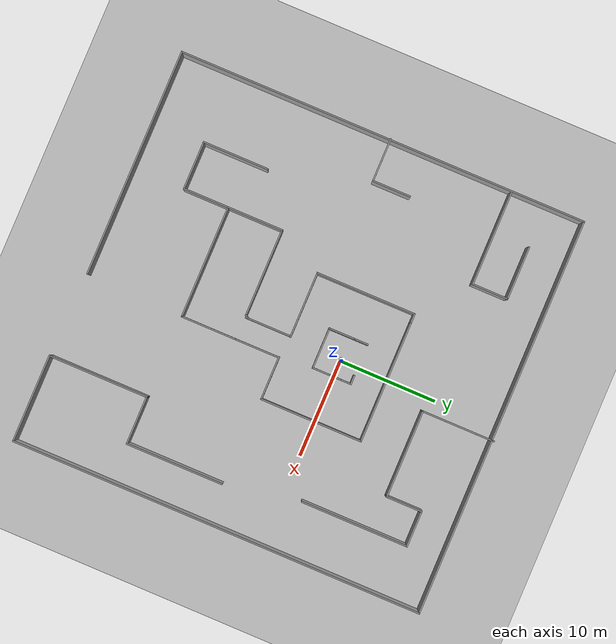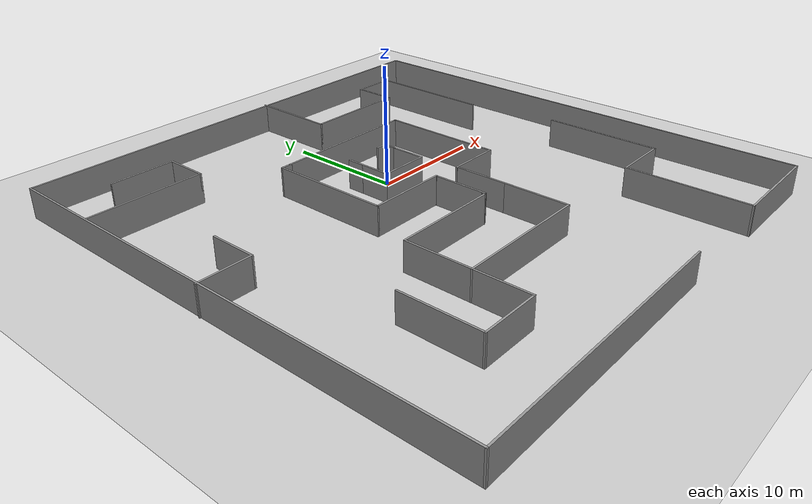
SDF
<sdf version="1.6">
 <world name="default">
  <light name="sun" type="directional">
   <pose>0 0 10 0 -0 0</pose>
   <diffuse>0.8 0.8 0.8 1</diffuse>
   <specular>0.2 0.2 0.2 1</specular>
   <attenuation>
    <range>1000</range>
    <constant>0.9</constant>
    <linear>0.01</linear>
    <quadratic>0.001</quadratic>
   </attenuation>
   <direction>-0.5 0.1 -0.9</direction>
  </light>
  <model name="ground_plane">
   <static>1</static>
   <link name="link">
    <collision name="collision">
     <geometry><plane><normal>0 0 1</normal><size>100 100</size></plane></geometry>
     <surface>
      <contact><collide_bitmask>65535</collide_bitmask></contact>
      <friction><ode><mu>100</mu><mu2>50</mu2></ode></friction>
     </surface>
    </collision>
    <visual name="visual">
     <cast_shadows>0</cast_shadows>
     <geometry><plane><normal>0 0 1</normal><size>100 100</size></plane></geometry>
     <material>
      <script><uri>file://media/materials/scripts/gazebo.material</uri><name>Gazebo/Grey</name></script>
     </material>
    </visual>
   </link>
  </model>
  <gravity>0 0 -9.8</gravity>
  <magnetic_field>6e-06 2.3e-05 -4.2e-05</magnetic_field>
  <atmosphere type="adiabatic"/>
  <physics name="default_physics" default="0" type="ode">
   <max_step_size>0.001</max_step_size>
   <real_time_factor>1</real_time_factor>
   <real_time_update_rate>1000</real_time_update_rate>
  </physics>
  <scene><ambient>0.4 0.4 0.4 1</ambient><background>0.7 0.7 0.7 1</background><shadows>1</shadows></scene>
  <audio><device>default</device></audio>
  <spherical_coordinates>
   <surface_model>EARTH_WGS84</surface_model>
   <latitude_deg>0</latitude_deg>
   <longitude_deg>0</longitude_deg>
   <elevation>0</elevation>
   <heading_deg>0</heading_deg>
  </spherical_coordinates>
  <model name="thing">
   <pose>-0.261635 -0.3973 0 0 -0 0</pose>
   <link name="Wall_10">
    <collision name="Wall_10_Collision">
     <geometry><box><size>4.25 0.15 2.5</size></box></geometry>
     <pose>0 0 1.25 0 -0 0</pose>
    </collision>
    <visual name="Wall_10_Visual">
     <pose>0 0 1.25 0 -0 0</pose>
     <geometry><box><size>4.25 0.15 2.5</size></box></geometry>
     <material>
      <script><uri>file://media/materials/scripts/gazebo.material</uri><name>Gazebo/Grey</name></script>
      <ambient>1 1 1 1</ambient>
     </material>
     <meta><layer>0</layer></meta>
    </visual>
    <pose>-0.118365 -1.7927 0 0 -0 0</pose>
   </link>
   <link name="Wall_11">
    <collision name="Wall_11_Collision">
     <geometry><box><size>3 0.15 2.5</size></box></geometry>
     <pose>0 0 1.25 0 -0 0</pose>
    </collision>
    <visual name="Wall_11_Visual">
     <pose>0 0 1.25 0 -0 0</pose>
     <geometry><box><size>3 0.15 2.5</size></box></geometry>
     <material>
      <script><uri>file://media/materials/scripts/gazebo.material</uri><name>Gazebo/Grey</name></script>
      <ambient>1 1 1 1</ambient>
     </material>
     <meta><layer>0</layer></meta>
    </visual>
    <pose>1.93163 -0.367697 0 0 -0 1.5708</pose>
   </link>
   <link name="Wall_13">
    <collision name="Wall_13_Collision">
     <geometry><box><size>1.25 0.15 2.5</size></box></geometry>
     <pose>0 0 1.25 0 -0 0</pose>
    </collision>
    <visual name="Wall_13_Visual">
     <pose>0 0 1.25 0 -0 0</pose>
     <geometry><box><size>1.25 0.15 2.5</size></box></geometry>
     <material>
      <script><uri>file://media/materials/scripts/gazebo.material</uri><name>Gazebo/Grey</name></script>
      <ambient>1 1 1 1</ambient>
     </material>
     <meta><layer>0</layer></meta>
    </visual>
    <pose>1.93163 1.6073 0 0 -0 1.5708</pose>
   </link>
   <link name="Wall_14">
    <collision name="Wall_14_Collision">
     <geometry><box><size>1 0.15 2.5</size></box></geometry>
     <pose>0 0 1.25 0 -0 0</pose>
    </collision>
    <visual name="Wall_14_Visual">
     <pose>0 0 1.25 0 -0 0</pose>
     <geometry><box><size>1 0.15 2.5</size></box></geometry>
     <material>
      <script><uri>file://media/materials/scripts/gazebo.material</uri><name>Gazebo/Grey</name></script>
      <ambient>1 1 1 1</ambient>
     </material>
     <meta><layer>0</layer></meta>
    </visual>
    <pose>1.50663 2.1573 0 0 -0 3.14159</pose>
   </link>
   <link name="Wall_16">
    <collision name="Wall_16_Collision">
     <geometry><box><size>1.5 0.15 2.5</size></box></geometry>
     <pose>0 0 1.25 0 -0 0</pose>
    </collision>
    <visual name="Wall_16_Visual">
     <pose>0 0 1.25 0 -0 0</pose>
     <geometry><box><size>1.5 0.15 2.5</size></box></geometry>
     <material>
      <script><uri>file://media/materials/scripts/gazebo.material</uri><name>Gazebo/Grey</name></script>
      <ambient>1 1 1 1</ambient>
     </material>
     <meta><layer>0</layer></meta>
    </visual>
    <pose>-2.16837 1.4823 0 0 -0 1.5708</pose>
   </link>
   <link name="Wall_18">
    <collision name="Wall_18_Collision">
     <geometry><box><size>12.5 0.15 2.5</size></box></geometry>
     <pose>0 0 1.25 0 -0 0</pose>
    </collision>
    <visual name="Wall_18_Visual">
     <pose>0 0 1.25 0 -0 0</pose>
     <geometry><box><size>12.5 0.15 2.5</size></box></geometry>
     <material>
      <script><uri>file://media/materials/scripts/gazebo.material</uri><name>Gazebo/Grey</name></script>
      <ambient>1 1 1 1</ambient>
     </material>
     <meta><layer>0</layer></meta>
    </visual>
    <pose>0.425 5.175 0 0 -0 0</pose>
   </link>
   <link name="Wall_19">
    <collision name="Wall_19_Collision">
     <geometry><box><size>10.5 0.15 2.5</size></box></geometry>
     <pose>0 0 1.25 0 -0 0</pose>
    </collision>
    <visual name="Wall_19_Visual">
     <pose>0 0 1.25 0 -0 0</pose>
     <geometry><box><size>10.5 0.15 2.5</size></box></geometry>
     <material>
      <script><uri>file://media/materials/scripts/gazebo.material</uri><name>Gazebo/Grey</name></script>
      <ambient>1 1 1 1</ambient>
     </material>
     <meta><layer>0</layer></meta>
    </visual>
    <pose>6.6 -0 0 0 -0 -1.5708</pose>
   </link>
   <link name="Wall_20">
    <collision name="Wall_20_Collision">
     <geometry><box><size>4.5 0.15 2.5</size></box></geometry>
     <pose>0 0 1.25 0 -0 0</pose>
    </collision>
    <visual name="Wall_20_Visual">
     <pose>0 0 1.25 0 -0 0</pose>
     <geometry><box><size>4.5 0.15 2.5</size></box></geometry>
     <material>
      <script><uri>file://media/materials/scripts/gazebo.material</uri><name>Gazebo/Grey</name></script>
      <ambient>1 1 1 1</ambient>
     </material>
     <meta><layer>0</layer></meta>
    </visual>
    <pose>4.425 -5.175 0 0 -0 3.14159</pose>
   </link>
   <link name="Wall_22">
    <collision name="Wall_22_Collision">
     <geometry><box><size>1 0.15 2.5</size></box></geometry>
     <pose>0 0 1.25 0 -0 0</pose>
    </collision>
    <visual name="Wall_22_Visual">
     <pose>0 0 1.25 0 -0 0</pose>
     <geometry><box><size>1 0.15 2.5</size></box></geometry>
     <material>
      <script><uri>file://media/materials/scripts/gazebo.material</uri><name>Gazebo/Grey</name></script>
      <ambient>1 1 1 1</ambient>
     </material>
     <meta><layer>0</layer></meta>
    </visual>
    <pose>-6.175 5.175 0 0 -0 3.14159</pose>
   </link>
   <link name="Wall_23">
    <collision name="Wall_23_Collision">
     <geometry><box><size>10.25 0.15 2.5</size></box></geometry>
     <pose>0 0 1.25 0 -0 0</pose>
    </collision>
    <visual name="Wall_23_Visual">
     <pose>0 0 1.25 0 -0 0</pose>
     <geometry><box><size>10.25 0.15 2.5</size></box></geometry>
     <material>
      <script><uri>file://media/materials/scripts/gazebo.material</uri><name>Gazebo/Grey</name></script>
      <ambient>1 1 1 1</ambient>
     </material>
     <meta><layer>0</layer></meta>
    </visual>
    <pose>-6.6 0.125 0 0 -0 -1.5708</pose>
   </link>
   <link name="Wall_24">
    <collision name="Wall_24_Collision">
     <geometry><box><size>6.75 0.15 2.5</size></box></geometry>
     <pose>0 0 1.25 0 -0 0</pose>
    </collision>
    <visual name="Wall_24_Visual">
     <pose>0 0 1.25 0 -0 0</pose>
     <geometry><box><size>6.75 0.15 2.5</size></box></geometry>
     <material>
      <script><uri>file://media/materials/scripts/gazebo.material</uri><name>Gazebo/Grey</name></script>
      <ambient>1 1 1 1</ambient>
     </material>
     <meta><layer>0</layer></meta>
    </visual>
    <pose>-3.3 -4.925 0 0 -0 0</pose>
   </link>
   <link name="Wall_6">
    <collision name="Wall_6_Collision">
     <geometry><box><size>0.15 0.15 2.5</size></box></geometry>
     <pose>0 0 1.25 0 -0 0</pose>
    </collision>
    <visual name="Wall_6_Visual">
     <pose>0 0 1.25 0 -0 0</pose>
     <geometry><box><size>0.15 0.15 2.5</size></box></geometry>
     <material>
      <script><uri>file://media/materials/scripts/gazebo.material</uri><name>Gazebo/Grey</name></script>
      <ambient>1 1 1 1</ambient>
     </material>
     <meta><layer>0</layer></meta>
    </visual>
    <pose>0.016635 0.33945 0 0 -0 0</pose>
   </link>
   <link name="Wall_9">
    <collision name="Wall_9_Collision">
     <geometry><box><size>2.75 0.15 2.5</size></box></geometry>
     <pose>0 0 1.25 0 -0 0</pose>
    </collision>
    <visual name="Wall_9_Visual">
     <pose>0 0 1.25 0 -0 0</pose>
     <geometry><box><size>2.75 0.15 2.5</size></box></geometry>
     <material>
      <script><uri>file://media/materials/scripts/gazebo.material</uri><name>Gazebo/Grey</name></script>
      <ambient>1 1 1 1</ambient>
     </material>
     <meta><layer>0</layer></meta>
    </visual>
    <pose>-2.16837 -0.492697 0 0 -0 -1.5708</pose>
   </link>
   <static>1</static>
  </model>
  <model name="another_thing">
   <pose>-1.07494 -4.68445 0 0 -0 0</pose>
   <link name="Wall_10">
    <collision name="Wall_10_Collision">
     <geometry><box><size>4.5 0.15 2.5</size></box></geometry>
     <pose>0 0 1.25 0 -0 0</pose>
    </collision>
    <visual name="Wall_10_Visual">
     <pose>0 0 1.25 0 -0 0</pose>
     <geometry><box><size>4.5 0.15 2.5</size></box></geometry>
     <material>
      <script><uri>file://media/materials/scripts/gazebo.material</uri><name>Gazebo/Grey</name></script>
      <ambient>1 1 1 1</ambient>
     </material>
     <meta><layer>0</layer></meta>
    </visual>
    <pose>3.10284 -3.18709 0 0 -0 -1.5708</pose>
   </link>
   <link name="Wall_14">
    <collision name="Wall_14_Collision">
     <geometry><box><size>5.75 0.15 2.5</size></box></geometry>
     <pose>0 0 1.25 0 -0 0</pose>
    </collision>
    <visual name="Wall_14_Visual">
     <pose>0 0 1.25 0 -0 0</pose>
     <geometry><box><size>5.75 0.15 2.5</size></box></geometry>
     <material>
      <script><uri>file://media/materials/scripts/gazebo.material</uri><name>Gazebo/Grey</name></script>
      <ambient>1 1 1 1</ambient>
     </material>
     <meta><layer>0</layer></meta>
    </visual>
    <pose>3.10284 -8.16209 0 0 -0 -1.5708</pose>
   </link>
   <link name="Wall_15">
    <collision name="Wall_15_Collision">
     <geometry><box><size>11.5 0.15 2.5</size></box></geometry>
     <pose>0 0 1.25 0 -0 0</pose>
    </collision>
    <visual name="Wall_15_Visual">
     <pose>0 0 1.25 0 -0 0</pose>
     <geometry><box><size>11.5 0.15 2.5</size></box></geometry>
     <material>
      <script><uri>file://media/materials/scripts/gazebo.material</uri><name>Gazebo/Grey</name></script>
      <ambient>1 1 1 1</ambient>
     </material>
     <meta><layer>0</layer></meta>
    </visual>
    <pose>-2.57216 -10.9621 0 0 -0 3.14159</pose>
   </link>
   <link name="Wall_16">
    <collision name="Wall_16_Collision">
     <geometry><box><size>5.75 0.15 2.5</size></box></geometry>
     <pose>0 0 1.25 0 -0 0</pose>
    </collision>
    <visual name="Wall_16_Visual">
     <pose>0 0 1.25 0 -0 0</pose>
     <geometry><box><size>5.75 0.15 2.5</size></box></geometry>
     <material>
      <script><uri>file://media/materials/scripts/gazebo.material</uri><name>Gazebo/Grey</name></script>
      <ambient>1 1 1 1</ambient>
     </material>
     <meta><layer>0</layer></meta>
    </visual>
    <pose>-8.24716 -8.16209 0 0 -0 1.5708</pose>
   </link>
   <link name="Wall_17">
    <collision name="Wall_17_Collision">
     <geometry><box><size>9 0.15 2.5</size></box></geometry>
     <pose>0 0 1.25 0 -0 0</pose>
    </collision>
    <visual name="Wall_17_Visual">
     <pose>0 0 1.25 0 -0 0</pose>
     <geometry><box><size>9 0.15 2.5</size></box></geometry>
     <material>
      <script><uri>file://media/materials/scripts/gazebo.material</uri><name>Gazebo/Grey</name></script>
      <ambient>1 1 1 1</ambient>
     </material>
     <meta><layer>0</layer></meta>
    </visual>
    <pose>-3.82216 -5.36209 0 0 -0 0</pose>
   </link>
   <link name="Wall_18">
    <collision name="Wall_18_Collision">
     <geometry><box><size>0.5 0.15 2.5</size></box></geometry>
     <pose>0 0 1.25 0 -0 0</pose>
    </collision>
    <visual name="Wall_18_Visual">
     <pose>0 0 1.25 0 -0 0</pose>
     <geometry><box><size>0.5 0.15 2.5</size></box></geometry>
     <material>
      <script><uri>file://media/materials/scripts/gazebo.material</uri><name>Gazebo/Grey</name></script>
      <ambient>1 1 1 1</ambient>
     </material>
     <meta><layer>0</layer></meta>
    </visual>
    <pose>0.69034 -5.21054 0 0 -0 1.0472</pose>
   </link>
   <link name="Wall_20">
    <collision name="Wall_20_Collision">
     <geometry><box><size>23.25 0.15 2.5</size></box></geometry>
     <pose>0 0 1.25 0 -0 0</pose>
    </collision>
    <visual name="Wall_20_Visual">
     <pose>0 0 1.25 0 -0 0</pose>
     <geometry><box><size>23.25 0.15 2.5</size></box></geometry>
     <material>
      <script><uri>file://media/materials/scripts/gazebo.material</uri><name>Gazebo/Grey</name></script>
      <ambient>1 1 1 1</ambient>
     </material>
     <meta><layer>0</layer></meta>
    </visual>
    <pose>-8.7081 -20.8961 0 0 -0 3.14159</pose>
   </link>
   <link name="Wall_21">
    <collision name="Wall_21_Collision">
     <geometry><box><size>42 0.15 2.5</size></box></geometry>
     <pose>0 0 1.25 0 -0 0</pose>
    </collision>
    <visual name="Wall_21_Visual">
     <pose>0 0 1.25 0 -0 0</pose>
     <geometry><box><size>42 0.15 2.5</size></box></geometry>
     <material>
      <script><uri>file://media/materials/scripts/gazebo.material</uri><name>Gazebo/Grey</name></script>
      <ambient>1 1 1 1</ambient>
     </material>
     <meta><layer>0</layer></meta>
    </visual>
    <pose>-20.2581 0.028912 0 0 -0 1.5708</pose>
   </link>
   <link name="Wall_22">
    <collision name="Wall_22_Collision">
     <geometry><box><size>40.75 0.15 2.5</size></box></geometry>
     <pose>0 0 1.25 0 -0 0</pose>
    </collision>
    <visual name="Wall_22_Visual">
     <pose>0 0 1.25 0 -0 0</pose>
     <geometry><box><size>40.75 0.15 2.5</size></box></geometry>
     <material>
      <script><uri>file://media/materials/scripts/gazebo.material</uri><name>Gazebo/Grey</name></script>
      <ambient>1 1 1 1</ambient>
     </material>
     <meta><layer>0</layer></meta>
    </visual>
    <pose>0.041901 20.9539 0 0 -0 0</pose>
   </link>
   <link name="Wall_23">
    <collision name="Wall_23_Collision">
     <geometry><box><size>42.25 0.15 2.5</size></box></geometry>
     <pose>0 0 1.25 0 -0 0</pose>
    </collision>
    <visual name="Wall_23_Visual">
     <pose>0 0 1.25 0 -0 0</pose>
     <geometry><box><size>42.25 0.15 2.5</size></box></geometry>
     <material>
      <script><uri>file://media/materials/scripts/gazebo.material</uri><name>Gazebo/Grey</name></script>
      <ambient>1 1 1 1</ambient>
     </material>
     <meta><layer>0</layer></meta>
    </visual>
    <pose>20.3419 -0.096088 0 0 -0 -1.5708</pose>
   </link>
   <link name="Wall_24">
    <collision name="Wall_24_Collision">
     <geometry><box><size>9 0.15 2.5</size></box></geometry>
     <pose>0 0 1.25 0 -0 0</pose>
    </collision>
    <visual name="Wall_24_Visual">
     <pose>0 0 1.25 0 -0 0</pose>
     <geometry><box><size>9 0.15 2.5</size></box></geometry>
     <material>
      <script><uri>file://media/materials/scripts/gazebo.material</uri><name>Gazebo/Grey</name></script>
      <ambient>1 1 1 1</ambient>
     </material>
     <meta><layer>0</layer></meta>
    </visual>
    <pose>15.9169 -21.1461 0 0 -0 3.14159</pose>
   </link>
   <link name="Wall_25">
    <collision name="Wall_25_Collision">
     <geometry><box><size>10.25 0.15 2.5</size></box></geometry>
     <pose>0 0 1.25 0 -0 0</pose>
    </collision>
    <visual name="Wall_25_Visual">
     <pose>0 0 1.25 0 -0 0</pose>
     <geometry><box><size>10.25 0.15 2.5</size></box></geometry>
     <material>
      <script><uri>file://media/materials/scripts/gazebo.material</uri><name>Gazebo/Grey</name></script>
      <ambient>1 1 1 1</ambient>
     </material>
     <meta><layer>0</layer></meta>
    </visual>
    <pose>11.4919 -16.0961 0 0 -0 1.5708</pose>
   </link>
   <link name="Wall_26">
    <collision name="Wall_26_Collision">
     <geometry><box><size>5 0.15 2.5</size></box></geometry>
     <pose>0 0 1.25 0 -0 0</pose>
    </collision>
    <visual name="Wall_26_Visual">
     <pose>0 0 1.25 0 -0 0</pose>
     <geometry><box><size>5 0.15 2.5</size></box></geometry>
     <material>
      <script><uri>file://media/materials/scripts/gazebo.material</uri><name>Gazebo/Grey</name></script>
      <ambient>1 1 1 1</ambient>
     </material>
     <meta><layer>0</layer></meta>
    </visual>
    <pose>13.9169 -11.0461 0 0 -0 0</pose>
   </link>
   <link name="Wall_27">
    <collision name="Wall_27_Collision">
     <geometry><box><size>10 0.15 2.5</size></box></geometry>
     <pose>0 0 1.25 0 -0 0</pose>
    </collision>
    <visual name="Wall_27_Visual">
     <pose>0 0 1.25 0 -0 0</pose>
     <geometry><box><size>10 0.15 2.5</size></box></geometry>
     <material>
      <script><uri>file://media/materials/scripts/gazebo.material</uri><name>Gazebo/Grey</name></script>
      <ambient>1 1 1 1</ambient>
     </material>
     <meta><layer>0</layer></meta>
    </visual>
    <pose>16.3419 -6.12109 0 0 -0 1.5708</pose>
   </link>
   <link name="Wall_29">
    <collision name="Wall_29_Collision">
     <geometry><box><size>9.75 0.15 2.5</size></box></geometry>
     <pose>0 0 1.25 0 -0 0</pose>
    </collision>
    <visual name="Wall_29_Visual">
     <pose>0 0 1.25 0 -0 0</pose>
     <geometry><box><size>9.75 0.15 2.5</size></box></geometry>
     <material>
      <script><uri>file://media/materials/scripts/gazebo.material</uri><name>Gazebo/Grey</name></script>
      <ambient>1 1 1 1</ambient>
     </material>
     <meta><layer>0</layer></meta>
    </visual>
    <pose>-15.3932 13.4677 0 0 -0 0</pose>
   </link>
   <link name="Wall_30">
    <collision name="Wall_30_Collision">
     <geometry><box><size>3.75 0.15 2.5</size></box></geometry>
     <pose>0 0 1.25 0 -0 0</pose>
    </collision>
    <visual name="Wall_30_Visual">
     <pose>0 0 1.25 0 -0 0</pose>
     <geometry><box><size>3.75 0.15 2.5</size></box></geometry>
     <material>
      <script><uri>file://media/materials/scripts/gazebo.material</uri><name>Gazebo/Grey</name></script>
      <ambient>1 1 1 1</ambient>
     </material>
     <meta><layer>0</layer></meta>
    </visual>
    <pose>-10.5932 15.2677 0 0 -0 1.5708</pose>
   </link>
   <link name="Wall_31">
    <collision name="Wall_31_Collision">
     <geometry><box><size>5.5 0.15 2.5</size></box></geometry>
     <pose>0 0 1.25 0 -0 0</pose>
    </collision>
    <visual name="Wall_31_Visual">
     <pose>0 0 1.25 0 -0 0</pose>
     <geometry><box><size>5.5 0.15 2.5</size></box></geometry>
     <material>
      <script><uri>file://media/materials/scripts/gazebo.material</uri><name>Gazebo/Grey</name></script>
      <ambient>1 1 1 1</ambient>
     </material>
     <meta><layer>0</layer></meta>
    </visual>
    <pose>-13.2682 17.0677 0 0 -0 3.14159</pose>
   </link>
   <link name="Wall_33">
    <collision name="Wall_33_Collision">
     <geometry><box><size>7.5 0.15 2.5</size></box></geometry>
     <pose>0 0 1.25 0 -0 0</pose>
    </collision>
    <visual name="Wall_33_Visual">
     <pose>0 0 1.25 0 -0 0</pose>
     <geometry><box><size>7.5 0.15 2.5</size></box></geometry>
     <material>
      <script><uri>file://media/materials/scripts/gazebo.material</uri><name>Gazebo/Grey</name></script>
      <ambient>1 1 1 1</ambient>
     </material>
     <meta><layer>0</layer></meta>
    </visual>
    <pose>2.46428 17.4711 0 0 -0 -1.5708</pose>
   </link>
   <link name="Wall_34">
    <collision name="Wall_34_Collision">
     <geometry><box><size>9 0.15 2.5</size></box></geometry>
     <pose>0 0 1.25 0 -0 0</pose>
    </collision>
    <visual name="Wall_34_Visual">
     <pose>0 0 1.25 0 -0 0</pose>
     <geometry><box><size>9 0.15 2.5</size></box></geometry>
     <material>
      <script><uri>file://media/materials/scripts/gazebo.material</uri><name>Gazebo/Grey</name></script>
      <ambient>1 1 1 1</ambient>
     </material>
     <meta><layer>0</layer></meta>
    </visual>
    <pose>6.88928 13.7961 0 0 -0 0</pose>
   </link>
   <link name="Wall_38">
    <collision name="Wall_38_Collision">
     <geometry><box><size>3.75 0.15 2.5</size></box></geometry>
     <pose>0 0 1.25 0 -0 0</pose>
    </collision>
    <visual name="Wall_38_Visual">
     <pose>0 0 1.25 0 -0 0</pose>
     <geometry><box><size>3.75 0.15 2.5</size></box></geometry>
     <material>
      <script><uri>file://media/materials/scripts/gazebo.material</uri><name>Gazebo/Grey</name></script>
      <ambient>1 1 1 1</ambient>
     </material>
     <meta><layer>0</layer></meta>
    </visual>
    <pose>11.3143 15.5961 0 0 -0 1.5708</pose>
   </link>
   <link name="Wall_39">
    <collision name="Wall_39_Collision">
     <geometry><box><size>3.75 0.15 2.5</size></box></geometry>
     <pose>0 0 1.25 0 -0 0</pose>
    </collision>
    <visual name="Wall_39_Visual">
     <pose>0 0 1.25 0 -0 0</pose>
     <geometry><box><size>3.75 0.15 2.5</size></box></geometry>
     <material>
      <script><uri>file://media/materials/scripts/gazebo.material</uri><name>Gazebo/Grey</name></script>
      <ambient>1 1 1 1</ambient>
     </material>
     <meta><layer>0</layer></meta>
    </visual>
    <pose>13.1143 17.3961 0 0 -0 0</pose>
   </link>
   <link name="Wall_40">
    <collision name="Wall_40_Collision">
     <geometry><box><size>11 0.15 2.5</size></box></geometry>
     <pose>0 0 1.25 0 -0 0</pose>
    </collision>
    <visual name="Wall_40_Visual">
     <pose>0 0 1.25 0 -0 0</pose>
     <geometry><box><size>11 0.15 2.5</size></box></geometry>
     <material>
      <script><uri>file://media/materials/scripts/gazebo.material</uri><name>Gazebo/Grey</name></script>
      <ambient>1 1 1 1</ambient>
     </material>
     <meta><layer>0</layer></meta>
    </visual>
    <pose>14.9143 11.9711 0 0 -0 -1.5708</pose>
   </link>
   <link name="Wall_42">
    <collision name="Wall_42_Collision">
     <geometry><box><size>4.5 0.15 2.5</size></box></geometry>
     <pose>0 0 1.25 0 -0 0</pose>
    </collision>
    <visual name="Wall_42_Visual">
     <pose>0 0 1.25 0 -0 0</pose>
     <geometry><box><size>4.5 0.15 2.5</size></box></geometry>
     <material>
      <script><uri>file://media/materials/scripts/gazebo.material</uri><name>Gazebo/Grey</name></script>
      <ambient>1 1 1 1</ambient>
     </material>
     <meta><layer>0</layer></meta>
    </visual>
    <pose>-18.1669 0.818074 0 0 -0 0</pose>
   </link>
   <link name="Wall_43">
    <collision name="Wall_43_Collision">
     <geometry><box><size>4 0.15 2.5</size></box></geometry>
     <pose>0 0 1.25 0 -0 0</pose>
    </collision>
    <visual name="Wall_43_Visual">
     <pose>0 0 1.25 0 -0 0</pose>
     <geometry><box><size>4 0.15 2.5</size></box></geometry>
     <material>
      <script><uri>file://media/materials/scripts/gazebo.material</uri><name>Gazebo/Grey</name></script>
      <ambient>1 1 1 1</ambient>
     </material>
     <meta><layer>0</layer></meta>
    </visual>
    <pose>-15.9919 2.74307 0 0 -0 1.5708</pose>
   </link>
   <link name="Wall_45">
    <collision name="Wall_45_Collision">
     <geometry><box><size>4.75 0.15 2.5</size></box></geometry>
     <pose>0 0 1.25 0 -0 0</pose>
    </collision>
    <visual name="Wall_45_Visual">
     <pose>0 0 1.25 0 -0 0</pose>
     <geometry><box><size>4.75 0.15 2.5</size></box></geometry>
     <material>
      <script><uri>file://media/materials/scripts/gazebo.material</uri><name>Gazebo/Grey</name></script>
      <ambient>1 1 1 1</ambient>
     </material>
     <meta><layer>0</layer></meta>
    </visual>
    <pose>-8.24716 -13.2621 0 0 -0 -1.5708</pose>
   </link>
   <link name="Wall_46">
    <collision name="Wall_46_Collision">
     <geometry><box><size>5 0.15 2.5</size></box></geometry>
     <pose>0 0 1.25 0 -0 0</pose>
    </collision>
    <visual name="Wall_46_Visual">
     <pose>0 0 1.25 0 -0 0</pose>
     <geometry><box><size>5 0.15 2.5</size></box></geometry>
     <material>
      <script><uri>file://media/materials/scripts/gazebo.material</uri><name>Gazebo/Grey</name></script>
      <ambient>1 1 1 1</ambient>
     </material>
     <meta><layer>0</layer></meta>
    </visual>
    <pose>-10.6722 -15.5621 0 0 -0 3.14159</pose>
   </link>
   <link name="Wall_47">
    <collision name="Wall_47_Collision">
     <geometry><box><size>6.75 0.15 2.5</size></box></geometry>
     <pose>0 0 1.25 0 -0 0</pose>
    </collision>
    <visual name="Wall_47_Visual">
     <pose>0 0 1.25 0 -0 0</pose>
     <geometry><box><size>6.75 0.15 2.5</size></box></geometry>
     <material>
      <script><uri>file://media/materials/scripts/gazebo.material</uri><name>Gazebo/Grey</name></script>
      <ambient>1 1 1 1</ambient>
     </material>
     <meta><layer>0</layer></meta>
    </visual>
    <pose>-13.0972 -12.2621 0 0 -0 1.5708</pose>
   </link>
   <link name="Wall_6">
    <collision name="Wall_6_Collision">
     <geometry><box><size>0.15 0.15 2.5</size></box></geometry>
     <pose>0 0 1.25 0 -0 0</pose>
    </collision>
    <visual name="Wall_6_Visual">
     <pose>0 0 1.25 0 -0 0</pose>
     <geometry><box><size>0.15 0.15 2.5</size></box></geometry>
     <material>
      <script><uri>file://media/materials/scripts/gazebo.material</uri><name>Gazebo/Grey</name></script>
      <ambient>1 1 1 1</ambient>
     </material>
     <meta><layer>0</layer></meta>
    </visual>
    <pose>0.79692 -0.674661 0 0 -0 0</pose>
   </link>
   <link name="Wall_8">
    <collision name="Wall_8_Collision">
     <geometry><box><size>4.75 0.15 2.5</size></box></geometry>
     <pose>0 0 1.25 0 -0 0</pose>
    </collision>
    <visual name="Wall_8_Visual">
     <pose>0 0 1.25 0 -0 0</pose>
     <geometry><box><size>4.75 0.15 2.5</size></box></geometry>
     <material>
      <script><uri>file://media/materials/scripts/gazebo.material</uri><name>Gazebo/Grey</name></script>
      <ambient>1 1 1 1</ambient>
     </material>
     <meta><layer>0</layer></meta>
    </visual>
    <pose>0.79692 -2.97466 0 0 -0 -1.5708</pose>
   </link>
   <static>1</static>
  </model>
 </world>
</sdf>
